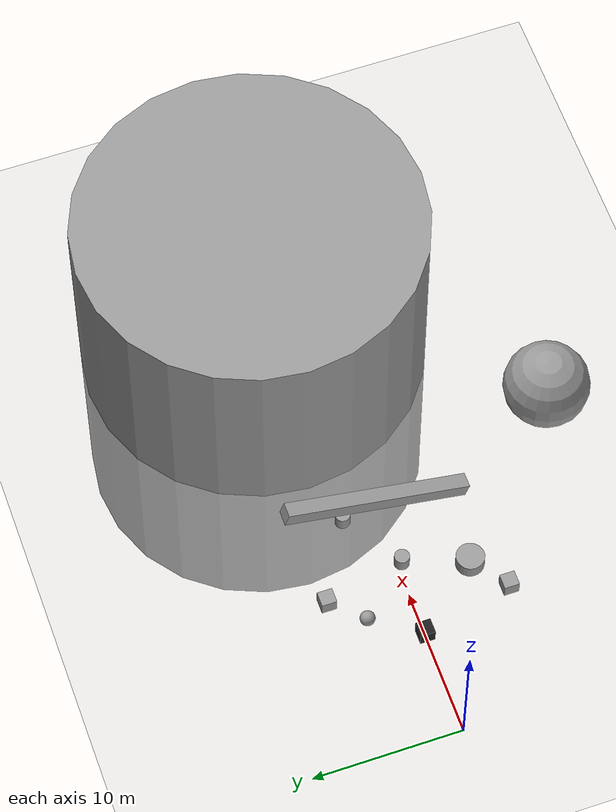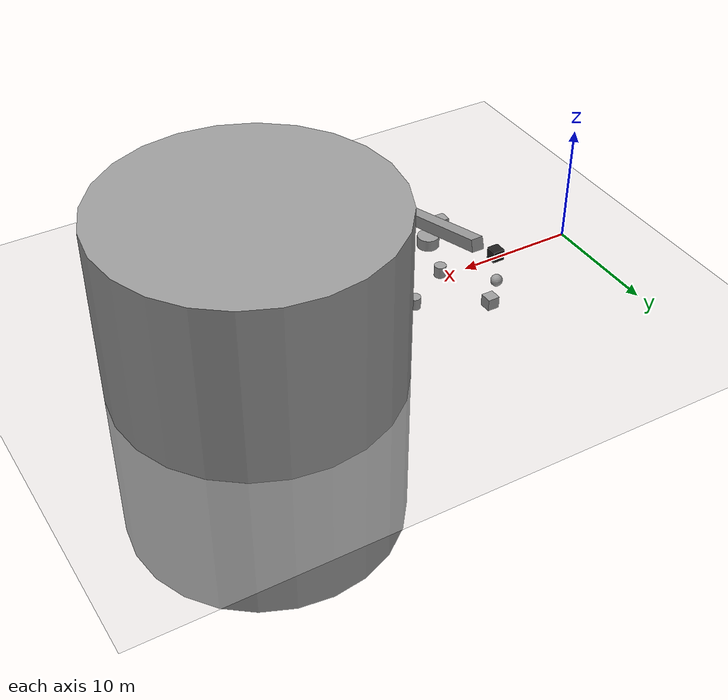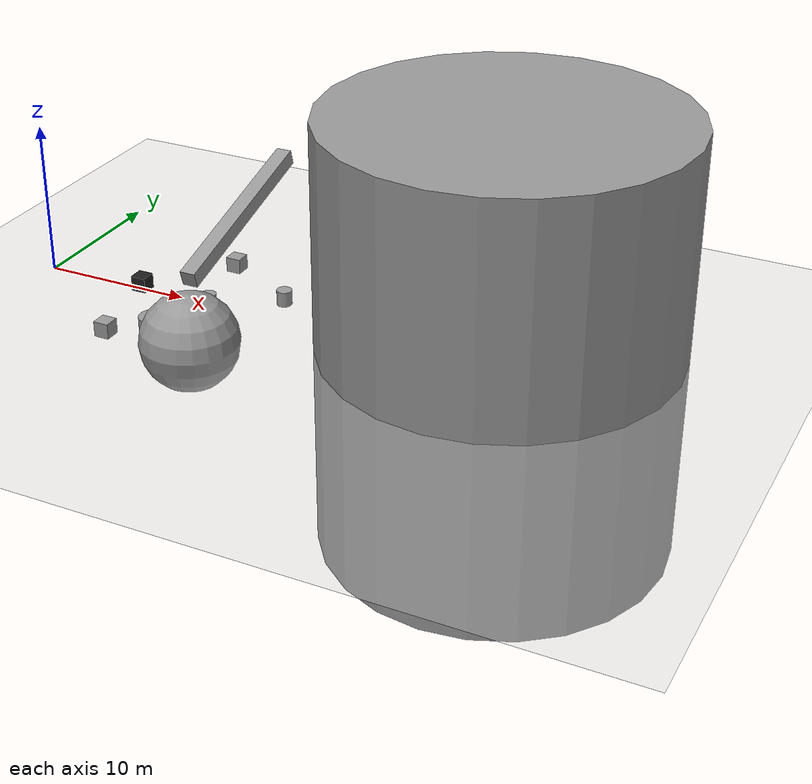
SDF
<sdf version="1.7">
 <world name="cameraSimulation">
  <light name="user_directional_light_0" type="directional">
   <pose>0 0 3 0 -0 0</pose>
   <direction>0 0 -1</direction>
   <attenuation><range>10</range></attenuation>
   <spot><inner_angle>0</inner_angle><outer_angle>0</outer_angle><falloff>0</falloff></spot>
  </light>
  <scene>
   <sky><clouds><speed>48</speed></clouds></sky>
   <ambient>0.4 0.4 0.4 1</ambient>
   <background>0.7 0.7 0.7 1</background>
   <shadows>1</shadows>
  </scene>
  <model name="ground_plane">
   <static>1</static>
   <link name="link">
    <collision name="collision">
     <geometry><plane><normal>0 0 1</normal><size>100 100</size></plane></geometry>
     <surface>
      <contact><collide_bitmask>65535</collide_bitmask></contact>
      <friction><ode><mu>100</mu><mu2>50</mu2></ode></friction>
     </surface>
    </collision>
    <visual name="visual">
     <cast_shadows>0</cast_shadows>
     <geometry><plane><normal>0 0 1</normal><size>100 100</size></plane></geometry>
    </visual>
   </link>
  </model>
  <model name="box">
   <static>1</static>
   <pose>1 -0.5 2 0 -0 0</pose>
   <link name="link">
    <sensor name="my_sensor" type="camera">
     <camera>
      <horizontal_fov>1.047</horizontal_fov>
      <image><width>320</width><height>240</height></image>
      <clip><near>0.1</near><far>100</far></clip>
     </camera>
     <always_on>1</always_on>
     <update_rate>30</update_rate>
     <visualize>1</visualize>
     <plugin name="camera_controller" filename="libgazebo_ros_camera.so">
      <alwaysOn>1</alwaysOn>
      <updateRate>0.0</updateRate>
      <robotNamespace>box</robotNamespace>
      <cameraName>camera1</cameraName>
      <imageTopicName>image_raw</imageTopicName>
      <cameraInfoTopicName>camera_info</cameraInfoTopicName>
      <frameName>camera_link</frameName>
      <hackBaseline>0.07</hackBaseline>
      <distortionK1>0.0</distortionK1>
      <distortionK2>0.0</distortionK2>
      <distortionK3>0.0</distortionK3>
      <distortionT1>0.0</distortionT1>
      <distortionT2>0.0</distortionT2>
     </plugin>
    </sensor>
   </link>
   <visual name="visual"><geometry><box><size>1.0 1.0 1.0</size></box></geometry></visual>
  </model>
  <model name="box2">
   <static>1</static>
   <pose>1 0.5 2 0 -0 0</pose>
   <link name="link">
    <sensor name="my_sensor2" type="camera">
     <camera>
      <horizontal_fov>1.047</horizontal_fov>
      <image><width>320</width><height>240</height></image>
      <clip><near>0.1</near><far>100</far></clip>
     </camera>
     <always_on>1</always_on>
     <update_rate>30</update_rate>
     <visualize>1</visualize>
     <plugin name="camera_controller" filename="libgazebo_ros_camera.so">
      <alwaysOn>1</alwaysOn>
      <updateRate>0.0</updateRate>
      <robotNamespace>box2</robotNamespace>
      <cameraName>camera2</cameraName>
      <imageTopicName>image_raw</imageTopicName>
      <cameraInfoTopicName>camera_info</cameraInfoTopicName>
      <frameName>camera_link</frameName>
      <hackBaseline>0.07</hackBaseline>
      <distortionK1>0.0</distortionK1>
      <distortionK2>0.0</distortionK2>
      <distortionK3>0.0</distortionK3>
      <distortionT1>0.0</distortionT1>
      <distortionT2>0.0</distortionT2>
     </plugin>
    </sensor>
   </link>
   <visual name="visual"><geometry><box><size>1.0 1.0 1.0</size></box></geometry></visual>
  </model>
  <gravity>0 0 -9.8</gravity>
  <magnetic_field>6e-06 2.3e-05 -4.2e-05</magnetic_field>
  <atmosphere type="adiabatic"/>
  <physics type="ode">
   <max_step_size>0.001</max_step_size>
   <real_time_factor>1</real_time_factor>
   <real_time_update_rate>1000</real_time_update_rate>
  </physics>
  <scene><ambient>0.4 0.4 0.4 1</ambient><background>0.7 0.7 0.7 1</background><shadows>1</shadows></scene>
  <spherical_coordinates>
   <surface_model>EARTH_WGS84</surface_model>
   <latitude_deg>0</latitude_deg>
   <longitude_deg>0</longitude_deg>
   <elevation>0</elevation>
   <heading_deg>0</heading_deg>
  </spherical_coordinates>
  <model name="unit_box1">
   <pose>7 5e-06 0.499995 -1e-05 0 0</pose>
   <link name="link">
    <inertial>
     <mass>1</mass>
     <inertia><ixx>0.1</ixx><ixy>0</ixy><ixz>0</ixz><iyy>0.1</iyy><iyz>0</iyz><izz>0.1</izz></inertia>
    </inertial>
    <collision name="collision"><geometry><box><size>1 1 1</size></box></geometry></collision>
    <visual name="visual">
     <geometry><box><size>1 1 1</size></box></geometry>
     <material>
      <script><name>Gazebo/Black</name><uri>file://media/materials/scripts/gazebo.material</uri></script>
     </material>
    </visual>
   </link>
  </model>
  <model name="unit_box">
   <pose>14.042 0.888056 6.29909 0.280987 -0.006532 0.003026</pose>
   <link name="link">
    <inertial>
     <mass>1</mass>
     <inertia>
      <ixx>0.166667</ixx>
      <ixy>0</ixy>
      <ixz>0</ixz>
      <iyy>0.166667</iyy>
      <iyz>0</iyz>
      <izz>0.166667</izz>
     </inertia>
    </inertial>
    <collision name="collision"><geometry><box><size>1 12.5592 1</size></box></geometry></collision>
    <visual name="visual">
     <geometry><box><size>1 12.5592 1</size></box></geometry>
     <material>
      <script><name>Gazebo/Grey</name><uri>file://media/materials/scripts/gazebo.material</uri></script>
     </material>
    </visual>
   </link>
  </model>
  <model name="unit_box_0">
   <pose>11.0746 5.14403 0.5 0 -0 0</pose>
   <link name="link">
    <inertial>
     <mass>1</mass>
     <inertia>
      <ixx>0.166667</ixx>
      <ixy>0</ixy>
      <ixz>0</ixz>
      <iyy>0.166667</iyy>
      <iyz>0</iyz>
      <izz>0.166667</izz>
     </inertia>
    </inertial>
    <collision name="collision"><geometry><box><size>1 1 1</size></box></geometry></collision>
    <visual name="visual">
     <geometry><box><size>1 1 1</size></box></geometry>
     <material>
      <script><name>Gazebo/Grey</name><uri>file://media/materials/scripts/gazebo.material</uri></script>
     </material>
    </visual>
   </link>
  </model>
  <model name="unit_cylinder">
   <pose>12.2641 -0.348254 0.5 0 -0 0</pose>
   <link name="link">
    <inertial>
     <mass>1</mass>
     <inertia><ixx>0.145833</ixx><ixy>0</ixy><ixz>0</ixz><iyy>0.145833</iyy><iyz>0</iyz><izz>0.125</izz></inertia>
    </inertial>
    <collision name="collision">
     <geometry><cylinder><radius>0.5</radius><length>1</length></cylinder></geometry>
    </collision>
    <visual name="visual">
     <geometry><cylinder><radius>0.5</radius><length>1</length></cylinder></geometry>
     <material>
      <script><name>Gazebo/Grey</name><uri>file://media/materials/scripts/gazebo.material</uri></script>
     </material>
    </visual>
   </link>
  </model>
  <model name="unit_sphere">
   <pose>9.0603 3.12447 0.5 0 -0 0</pose>
   <link name="link">
    <inertial>
     <mass>1</mass>
     <inertia><ixx>0.1</ixx><ixy>0</ixy><ixz>0</ixz><iyy>0.1</iyy><iyz>0</iyz><izz>0.1</izz></inertia>
    </inertial>
    <collision name="collision"><geometry><sphere><radius>0.5</radius></sphere></geometry></collision>
    <visual name="visual">
     <geometry><sphere><radius>0.5</radius></sphere></geometry>
     <material>
      <script><name>Gazebo/Grey</name><uri>file://media/materials/scripts/gazebo.material</uri></script>
     </material>
    </visual>
   </link>
  </model>
  <model name="unit_cylinder_0">
   <pose>10.8161 -4.45779 0.5 0 -0 0</pose>
   <link name="link">
    <inertial>
     <mass>1</mass>
     <inertia><ixx>0.145833</ixx><ixy>0</ixy><ixz>0</ixz><iyy>0.145833</iyy><iyz>0</iyz><izz>0.125</izz></inertia>
    </inertial>
    <collision name="collision">
     <geometry><cylinder><radius>0.938545</radius><length>1</length></cylinder></geometry>
    </collision>
    <visual name="visual">
     <geometry><cylinder><radius>0.938545</radius><length>1</length></cylinder></geometry>
     <material>
      <script><name>Gazebo/Grey</name><uri>file://media/materials/scripts/gazebo.material</uri></script>
     </material>
    </visual>
   </link>
  </model>
  <model name="unit_sphere_0">
   <pose>18.8516 -12.5134 5.17699 0 -0 0</pose>
   <link name="link">
    <inertial>
     <mass>1</mass>
     <inertia><ixx>0.1</ixx><ixy>0</ixy><ixz>0</ixz><iyy>0.1</iyy><iyz>0</iyz><izz>0.1</izz></inertia>
    </inertial>
    <collision name="collision"><geometry><sphere><radius>2.83051</radius></sphere></geometry></collision>
    <visual name="visual">
     <geometry><sphere><radius>2.83051</radius></sphere></geometry>
     <material>
      <script><name>Gazebo/Grey</name><uri>file://media/materials/scripts/gazebo.material</uri></script>
     </material>
    </visual>
   </link>
  </model>
  <model name="unit_box_1">
   <pose>8.42849 -6.21154 0.5 0 -0 0</pose>
   <link name="link">
    <inertial>
     <mass>1</mass>
     <inertia>
      <ixx>0.166667</ixx>
      <ixy>0</ixy>
      <ixz>0</ixz>
      <iyy>0.166667</iyy>
      <iyz>0</iyz>
      <izz>0.166667</izz>
     </inertia>
    </inertial>
    <collision name="collision"><geometry><box><size>1 1 1</size></box></geometry></collision>
    <visual name="visual">
     <geometry><box><size>1 1 1</size></box></geometry>
     <material>
      <script><name>Gazebo/Grey</name><uri>file://media/materials/scripts/gazebo.material</uri></script>
     </material>
    </visual>
   </link>
  </model>
  <model name="unit_cylinder_1">
   <pose>16.3405 2.22674 0.5 0 -0 0</pose>
   <link name="link">
    <inertial>
     <mass>1</mass>
     <inertia><ixx>0.145833</ixx><ixy>0</ixy><ixz>0</ixz><iyy>0.145833</iyy><iyz>0</iyz><izz>0.125</izz></inertia>
    </inertial>
    <collision name="collision">
     <geometry><cylinder><radius>0.5</radius><length>1</length></cylinder></geometry>
    </collision>
    <visual name="visual">
     <geometry><cylinder><radius>0.5</radius><length>1</length></cylinder></geometry>
     <material>
      <script><name>Gazebo/Grey</name><uri>file://media/materials/scripts/gazebo.material</uri></script>
     </material>
    </visual>
   </link>
  </model>
  <model name="unit_cylinder_2">
   <pose>30.8379 3.34152 0.5 0 -0 0</pose>
   <link name="link">
    <inertial>
     <mass>1</mass>
     <inertia><ixx>0.145833</ixx><ixy>0</ixy><ixz>0</ixz><iyy>0.145833</iyy><iyz>0</iyz><izz>0.125</izz></inertia>
    </inertial>
    <collision name="collision">
     <geometry><cylinder><radius>11.4476</radius><length>28.5422</length></cylinder></geometry>
    </collision>
    <visual name="visual">
     <geometry><cylinder><radius>11.4476</radius><length>28.5422</length></cylinder></geometry>
     <material>
      <script><name>Gazebo/Grey</name><uri>file://media/materials/scripts/gazebo.material</uri></script>
     </material>
    </visual>
   </link>
  </model>
 </world>
</sdf>
